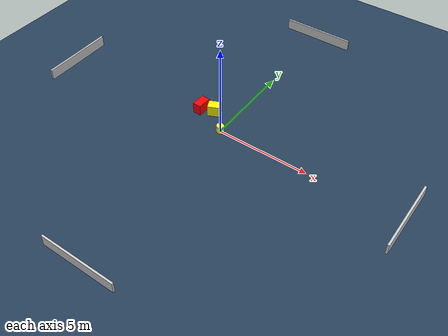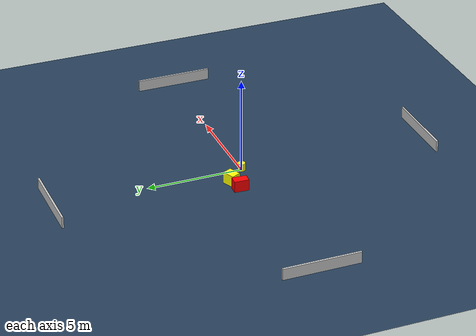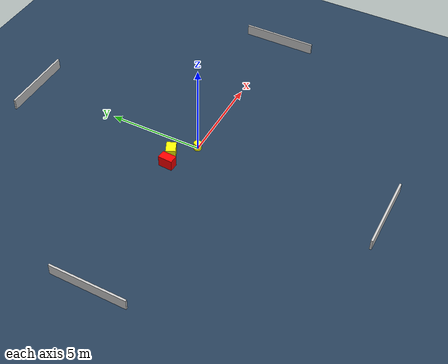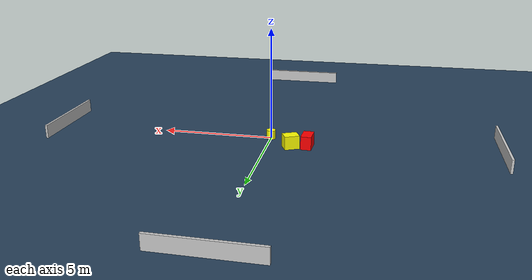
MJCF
<?xml version="1.0" ?>
<mujoco model="generated_environment">
  <option timestep="0.01" integrator="RK4" cone="elliptic"/>
  <default>
    <geom density="1"/>
  </default>
  <asset>
    <texture builtin="gradient" height="3072" name="skybox" rgb1="0.3 0.5 0.7" rgb2="0 0 0" type="skybox" width="512"/>
    <texture builtin="checker" height="300" name="groundplane" rgb1="0.2 0.3 0.4" rgb2="0.1 0.2 0.3" type="2d" width="300"/>
    <material name="groundplane" reflectance="0.2" texrepeat="5 5" texture="groundplane"/>
  </asset>
  <worldbody>
    <light dir="0 0 -1" directional="true" pos="0 0 1.5"/>
    <geom condim="3" friction="0.5 0.005 0.001" material="groundplane" name="floor" pos="0 0 0" size="0 0 0.05" type="plane"/>
    <body name="walls">
      <geom name="wall_1" condim="4" pos="-10.0 0.0 0.3" rgba="0.800000011920929 0.800000011920929 0.800000011920929 1.0" size="0.05 2.0 0.3" type="box"/>
      <geom name="wall_2" condim="4" pos="10.0 0.0 0.3" rgba="0.800000011920929 0.800000011920929 0.800000011920929 1.0" size="0.05 2.0 0.3" type="box"/>
      <geom name="wall_3" condim="4" pos="0.0 -10.0 0.3" rgba="0.800000011920929 0.800000011920929 0.800000011920929 1.0" size="2.0 0.05 0.3" type="box"/>
      <geom name="wall_4" condim="4" pos="0.0 10.0 0.3" rgba="0.800000011920929 0.800000011920929 0.800000011920929 1.0" size="2.0 0.05 0.3" type="box"/>
    </body>
    <body name="robot">
      <joint name="joint_x" type="slide" pos="0 0 0" axis="1 0 0"/>
      <joint name="joint_y" type="slide" pos="0 0 0" axis="0 1 0"/>
      <geom name="robot" type="cylinder" pos="0.0 0.0 0.2" size="0.2 0.2 0.0" mass="5.0" friction="1.0 0.005 0.0001" condim="4" rgba="1.0 1.0 0.0 1.0"/>
    </body>
    <body name="obstacle_1_movable">
      <geom name="obstacle_1_movable" condim="4" pos="-1.0517312424829277 0.9513250096616027 0.3" euler="0 0 24.448812508374115" friction="0.0 0.005 0.001" rgba="1.0 1.0 0.0 1.0" size="0.331666446687625 0.2528998692555713 0.3" type="box" mass="0.1"/>
      <joint type="free"/>
    </body>
    <body name="obstacle_2_static">
      <geom name="obstacle_2_static" condim="4" pos="-1.7580826643970695 0.7625708175606145 0.3" euler="0 0 356.9838485357855" friction="0.0 0.005 0.001" rgba="1.0 0.0 0.0 1.0" size="0.23126116348894882 0.3801064667474989 0.3" type="box"/>
    </body>
  </worldbody>
  <actuator>
    <motor name="actuator_x" joint="joint_x" gear="1" ctrlrange="-1 1"/>
    <motor name="actuator_y" joint="joint_y" gear="1" ctrlrange="-1 1"/>
  </actuator>
</mujoco>
